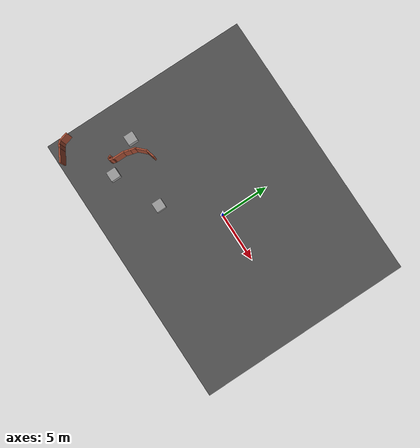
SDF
<sdf version="1.7">
 <world name="default">
  <model name="asphalt_plane">
   <static>1</static>
   <link name="link">
    <collision name="collision"><geometry><box><size>28.54 22.04 0.1</size></box></geometry></collision>
    <visual name="visual">
     <cast_shadows>0</cast_shadows>
     <geometry><box><size>28.54 22.04 0.1</size></box></geometry>
     <material>
      <script>
       <uri>model://asphalt_plane/materials/scripts</uri>
       <uri>model://asphalt_plane/materials/textures</uri>
       <name>vrc/asphalt</name>
      </script>
     </material>
    </visual>
   </link>
   <pose>-0.719505 0.551979 0 0 -0 0</pose>
  </model>
  <model name="unit_box_clone">
   <pose>-9.02997 -6.55582 0.549999 -2e-06 -0 0.000101</pose>
   <link name="link">
    <inertial>
     <mass>1</mass>
     <inertia>
      <ixx>0.166667</ixx>
      <ixy>0</ixy>
      <ixz>0</ixz>
      <iyy>0.166667</iyy>
      <iyz>0</iyz>
      <izz>0.166667</izz>
     </inertia>
    </inertial>
    <collision name="collision"><geometry><box><size>1 1 1</size></box></geometry></collision>
    <visual name="visual">
     <geometry><box><size>1 1 1</size></box></geometry>
     <material>
      <script><name>Gazebo/Grey</name><uri>file://media/materials/scripts/gazebo.material</uri></script>
     </material>
    </visual>
   </link>
  </model>
  <model name="unit_box_clone_16">
   <pose>-11.0431 -3.28248 0.549999 -2e-06 -0 9.3e-05</pose>
   <link name="link">
    <inertial>
     <mass>1</mass>
     <inertia>
      <ixx>0.166667</ixx>
      <ixy>0</ixy>
      <ixz>0</ixz>
      <iyy>0.166667</iyy>
      <iyz>0</iyz>
      <izz>0.166667</izz>
     </inertia>
    </inertial>
    <collision name="collision"><geometry><box><size>1 1 1</size></box></geometry></collision>
    <visual name="visual">
     <geometry><box><size>1 1 1</size></box></geometry>
     <material>
      <script><name>Gazebo/Grey</name><uri>file://media/materials/scripts/gazebo.material</uri></script>
     </material>
    </visual>
   </link>
  </model>
  <model name="unit_box_clone_clone">
   <pose>-4.1582 -4.55217 0.549999 -2e-06 0 0.000104</pose>
   <link name="link">
    <inertial>
     <mass>1</mass>
     <inertia>
      <ixx>0.166667</ixx>
      <ixy>0</ixy>
      <ixz>0</ixz>
      <iyy>0.166667</iyy>
      <iyz>0</iyz>
      <izz>0.166667</izz>
     </inertia>
    </inertial>
    <collision name="collision"><geometry><box><size>1 1 1</size></box></geometry></collision>
    <visual name="visual">
     <geometry><box><size>1 1 1</size></box></geometry>
     <material>
      <script><name>Gazebo/Grey</name><uri>file://media/materials/scripts/gazebo.material</uri></script>
     </material>
    </visual>
   </link>
  </model>
  <model name="Untitled_4">
   <pose>-5.25205 -3.0446 0 0 -0 0</pose>
   <link name="Wall_0">
    <collision name="Wall_0_Collision">
     <geometry><box><size>1 0.15 2.5</size></box></geometry>
     <pose>0 0 1.25 0 -0 0</pose>
    </collision>
    <visual name="Wall_0_Visual">
     <pose>0 0 1.25 0 -0 0</pose>
     <geometry><box><size>1 0.15 2.5</size></box></geometry>
     <material>
      <script><uri>file://media/materials/scripts/gazebo.material</uri><name>Gazebo/Bricks</name></script>
      <ambient>1 1 1 1</ambient>
     </material>
     <meta><layer>0</layer></meta>
    </visual>
    <pose>-3.30821 0.542856 0 0 -0 -2.87979</pose>
   </link>
   <link name="Wall_10">
    <collision name="Wall_10_Collision">
     <geometry><box><size>0.25 0.15 2.5</size></box></geometry>
     <pose>0 0 1.25 0 -0 0</pose>
    </collision>
    <visual name="Wall_10_Visual">
     <pose>0 0 1.25 0 -0 0</pose>
     <geometry><box><size>0.25 0.15 2.5</size></box></geometry>
     <material>
      <script><uri>file://media/materials/scripts/gazebo.material</uri><name>Gazebo/Bricks</name></script>
      <ambient>1 1 1 1</ambient>
     </material>
     <meta><layer>0</layer></meta>
    </visual>
    <pose>-5.04101 -2.91715 0 0 -0 2.61799</pose>
   </link>
   <link name="Wall_11">
    <collision name="Wall_11_Collision">
     <geometry><box><size>0.25 0.15 2.5</size></box></geometry>
     <pose>0 0 1.25 0 -0 0</pose>
    </collision>
    <visual name="Wall_11_Visual">
     <pose>0 0 1.25 0 -0 0</pose>
     <geometry><box><size>0.25 0.15 2.5</size></box></geometry>
     <material>
      <script><uri>file://media/materials/scripts/gazebo.material</uri><name>Gazebo/Bricks</name></script>
      <ambient>1 1 1 1</ambient>
     </material>
     <meta><layer>0</layer></meta>
    </visual>
    <pose>-5.10931 -2.84884 0 0 -0 2.0944</pose>
   </link>
   <link name="Wall_12">
    <collision name="Wall_12_Collision">
     <geometry><box><size>0.25 0.15 2.5</size></box></geometry>
     <pose>0 0 1.25 0 -0 0</pose>
    </collision>
    <visual name="Wall_12_Visual">
     <pose>0 0 1.25 0 -0 0</pose>
     <geometry><box><size>0.25 0.15 2.5</size></box></geometry>
     <material>
      <script><uri>file://media/materials/scripts/gazebo.material</uri><name>Gazebo/Bricks</name></script>
      <ambient>1 1 1 1</ambient>
     </material>
     <meta><layer>0</layer></meta>
    </visual>
    <pose>-5.14726 -2.75725 0 0 -0 1.8326</pose>
   </link>
   <link name="Wall_3">
    <collision name="Wall_3_Collision">
     <geometry><box><size>1.25 0.15 2.5</size></box></geometry>
     <pose>0 0 1.25 0 -0 0</pose>
    </collision>
    <visual name="Wall_3_Visual">
     <pose>0 0 1.25 0 -0 0</pose>
     <geometry><box><size>1.25 0.15 2.5</size></box></geometry>
     <material>
      <script><uri>file://media/materials/scripts/gazebo.material</uri><name>Gazebo/Bricks</name></script>
      <ambient>1 1 1 1</ambient>
     </material>
     <meta><layer>0</layer></meta>
    </visual>
    <pose>-4.10763 0.043949 0 0 -0 -2.35619</pose>
   </link>
   <link name="Wall_4">
    <collision name="Wall_4_Collision">
     <geometry><box><size>0.75 0.15 2.5</size></box></geometry>
     <pose>0 0 1.25 0 -0 0</pose>
    </collision>
    <visual name="Wall_4_Visual">
     <pose>0 0 1.25 0 -0 0</pose>
     <geometry><box><size>0.75 0.15 2.5</size></box></geometry>
     <material>
      <script><uri>file://media/materials/scripts/gazebo.material</uri><name>Gazebo/Bricks</name></script>
      <ambient>1 1 1 1</ambient>
     </material>
     <meta><layer>0</layer></meta>
    </visual>
    <pose>-4.57419 -0.634738 0 0 -0 -1.8326</pose>
   </link>
   <link name="Wall_5">
    <collision name="Wall_5_Collision">
     <geometry><box><size>0.75 0.15 2.5</size></box></geometry>
     <pose>0 0 1.25 0 -0 0</pose>
    </collision>
    <visual name="Wall_5_Visual">
     <pose>0 0 1.25 0 -0 0</pose>
     <geometry><box><size>0.75 0.15 2.5</size></box></geometry>
     <material>
      <script><uri>file://media/materials/scripts/gazebo.material</uri><name>Gazebo/Bricks</name></script>
      <ambient>1 1 1 1</ambient>
     </material>
     <meta><layer>0</layer></meta>
    </visual>
    <pose>-4.72948 -1.21429 0 0 -0 -1.8326</pose>
   </link>
   <link name="Wall_6">
    <collision name="Wall_6_Collision">
     <geometry><box><size>1.25 0.15 2.5</size></box></geometry>
     <pose>0 0 1.25 0 -0 0</pose>
    </collision>
    <visual name="Wall_6_Visual">
     <pose>0 0 1.25 0 -0 0</pose>
     <geometry><box><size>1.25 0.15 2.5</size></box></geometry>
     <material>
      <script><uri>file://media/materials/scripts/gazebo.material</uri><name>Gazebo/Bricks</name></script>
      <ambient>1 1 1 1</ambient>
     </material>
     <meta><layer>0</layer></meta>
    </visual>
    <pose>-4.80713 -2.05407 0 0 -0 -1.5708</pose>
   </link>
   <link name="Wall_8">
    <collision name="Wall_8_Collision">
     <geometry><box><size>0.5 0.15 2.5</size></box></geometry>
     <pose>0 0 1.25 0 -0 0</pose>
    </collision>
    <visual name="Wall_8_Visual">
     <pose>0 0 1.25 0 -0 0</pose>
     <geometry><box><size>0.5 0.15 2.5</size></box></geometry>
     <material>
      <script><uri>file://media/materials/scripts/gazebo.material</uri><name>Gazebo/Bricks</name></script>
      <ambient>1 1 1 1</ambient>
     </material>
     <meta><layer>0</layer></meta>
    </visual>
    <pose>-4.85242 -2.77311 0 0 -0 -1.8326</pose>
   </link>
   <link name="Wall_9">
    <collision name="Wall_9_Collision">
     <geometry><box><size>0.25 0.15 2.5</size></box></geometry>
     <pose>0 0 1.25 0 -0 0</pose>
    </collision>
    <visual name="Wall_9_Visual">
     <pose>0 0 1.25 0 -0 0</pose>
     <geometry><box><size>0.25 0.15 2.5</size></box></geometry>
     <material>
      <script><uri>file://media/materials/scripts/gazebo.material</uri><name>Gazebo/Bricks</name></script>
      <ambient>1 1 1 1</ambient>
     </material>
     <meta><layer>0</layer></meta>
    </visual>
    <pose>-4.94771 -2.94215 0 0 -0 3.14159</pose>
   </link>
   <static>1</static>
  </model>
  <model name="Untitled_5">
   <pose>-7.27719 -5.03989 0 0 -0 0</pose>
   <link name="Wall_14">
    <collision name="Wall_14_Collision">
     <geometry><box><size>1 0.15 2.5</size></box></geometry>
     <pose>0 0 1.25 0 -0 0</pose>
    </collision>
    <visual name="Wall_14_Visual">
     <pose>0 0 1.25 0 -0 0</pose>
     <geometry><box><size>1 0.15 2.5</size></box></geometry>
     <material>
      <script><uri>file://media/materials/scripts/gazebo.material</uri><name>Gazebo/Bricks</name></script>
      <ambient>1 1 1 1</ambient>
     </material>
     <meta><layer>0</layer></meta>
    </visual>
    <pose>-7.07531 -3.42944 0 0 -0 -1.309</pose>
   </link>
   <link name="Wall_16">
    <collision name="Wall_16_Collision">
     <geometry><box><size>0.5 0.15 2.5</size></box></geometry>
     <pose>0 0 1.25 0 -0 0</pose>
    </collision>
    <visual name="Wall_16_Visual">
     <pose>0 0 1.25 0 -0 0</pose>
     <geometry><box><size>0.5 0.15 2.5</size></box></geometry>
     <material>
      <script><uri>file://media/materials/scripts/gazebo.material</uri><name>Gazebo/Bricks</name></script>
      <ambient>1 1 1 1</ambient>
     </material>
     <meta><layer>0</layer></meta>
    </visual>
    <pose>-6.84157 -3.9637 0 0 -0 -0.785398</pose>
   </link>
   <link name="Wall_17">
    <collision name="Wall_17_Collision">
     <geometry><box><size>0.5 0.15 2.5</size></box></geometry>
     <pose>0 0 1.25 0 -0 0</pose>
    </collision>
    <visual name="Wall_17_Visual">
     <pose>0 0 1.25 0 -0 0</pose>
     <geometry><box><size>0.5 0.15 2.5</size></box></geometry>
     <material>
      <script><uri>file://media/materials/scripts/gazebo.material</uri><name>Gazebo/Bricks</name></script>
      <ambient>1 1 1 1</ambient>
     </material>
     <meta><layer>0</layer></meta>
    </visual>
    <pose>-6.56627 -4.17494 0 0 -0 -0.523599</pose>
   </link>
   <link name="Wall_18">
    <collision name="Wall_18_Collision">
     <geometry><box><size>1.5 0.15 2.5</size></box></geometry>
     <pose>0 0 1.25 0 -0 0</pose>
    </collision>
    <visual name="Wall_18_Visual">
     <pose>0 0 1.25 0 -0 0</pose>
     <geometry><box><size>1.5 0.15 2.5</size></box></geometry>
     <material>
      <script><uri>file://media/materials/scripts/gazebo.material</uri><name>Gazebo/Bricks</name></script>
      <ambient>1 1 1 1</ambient>
     </material>
     <meta><layer>0</layer></meta>
    </visual>
    <pose>-5.83015 -4.59994 0 0 -0 -0.523599</pose>
   </link>
   <static>1</static>
  </model>
 </world>
</sdf>
